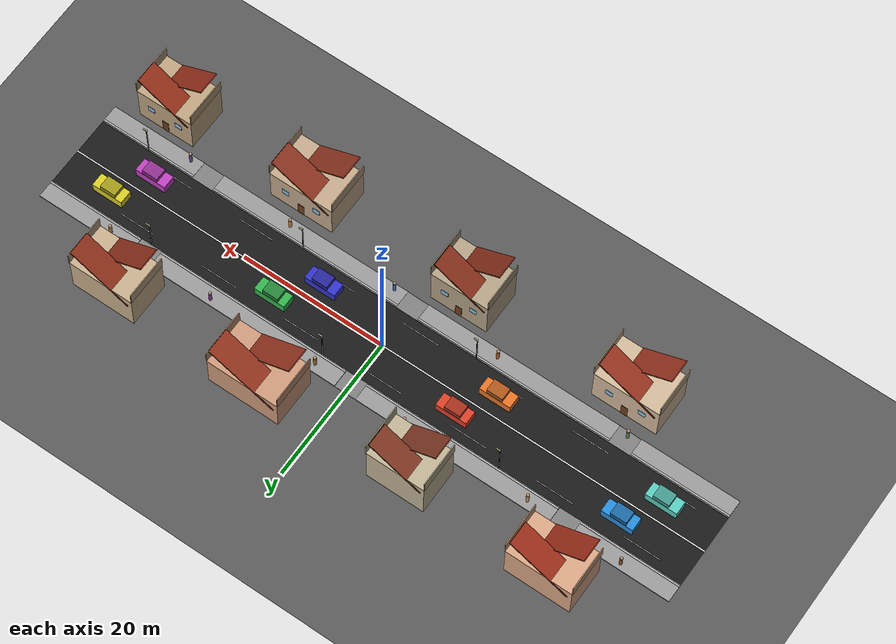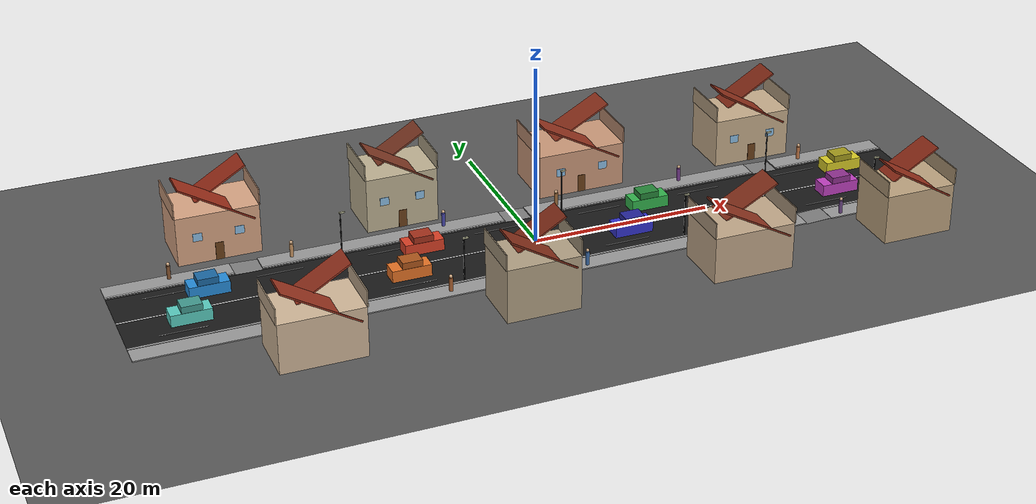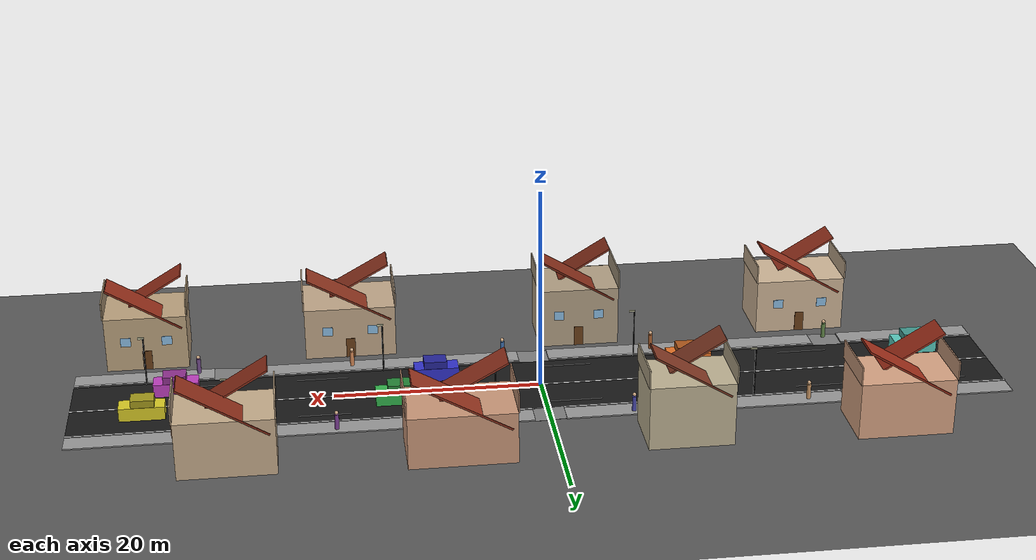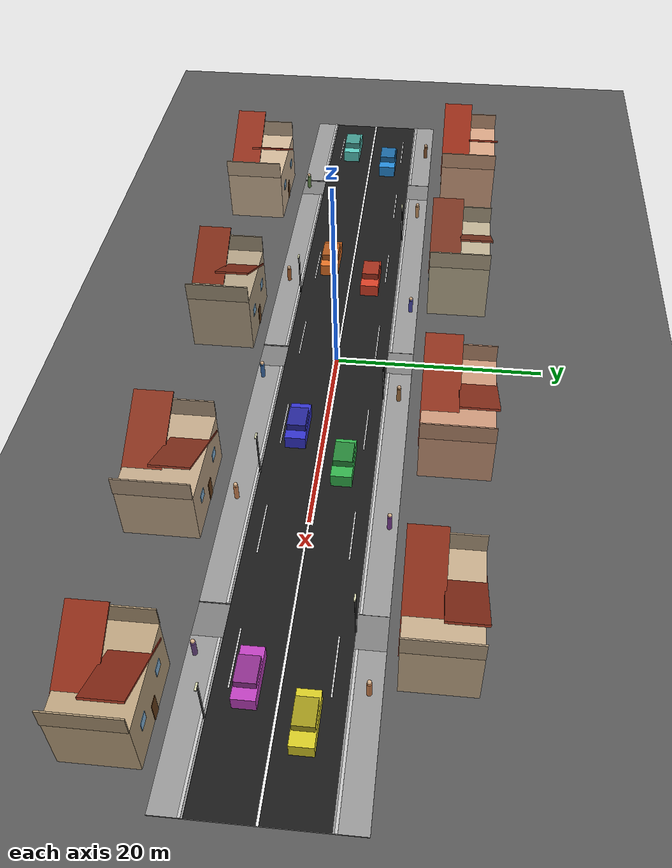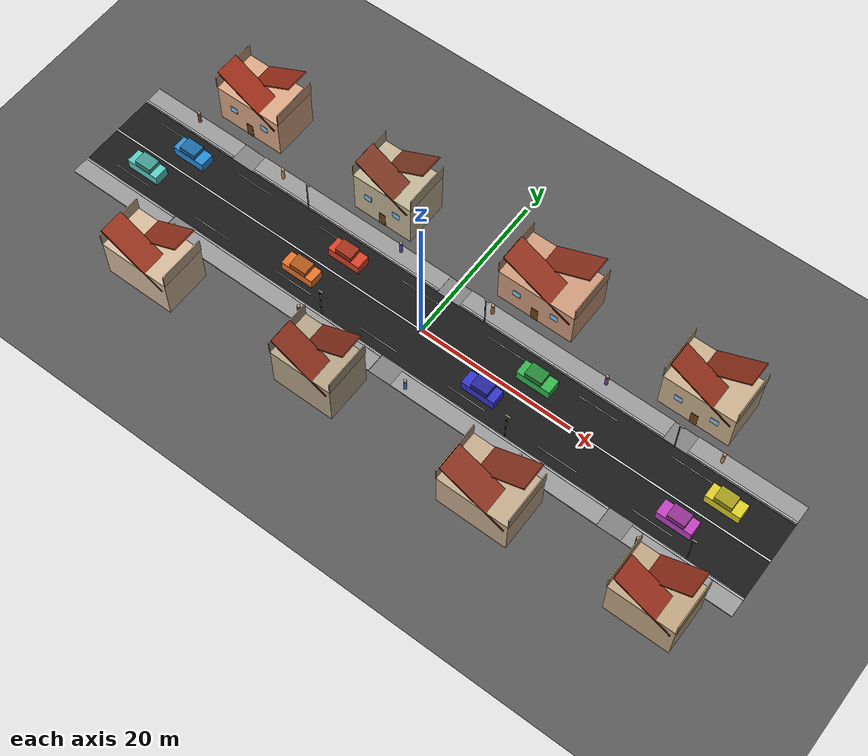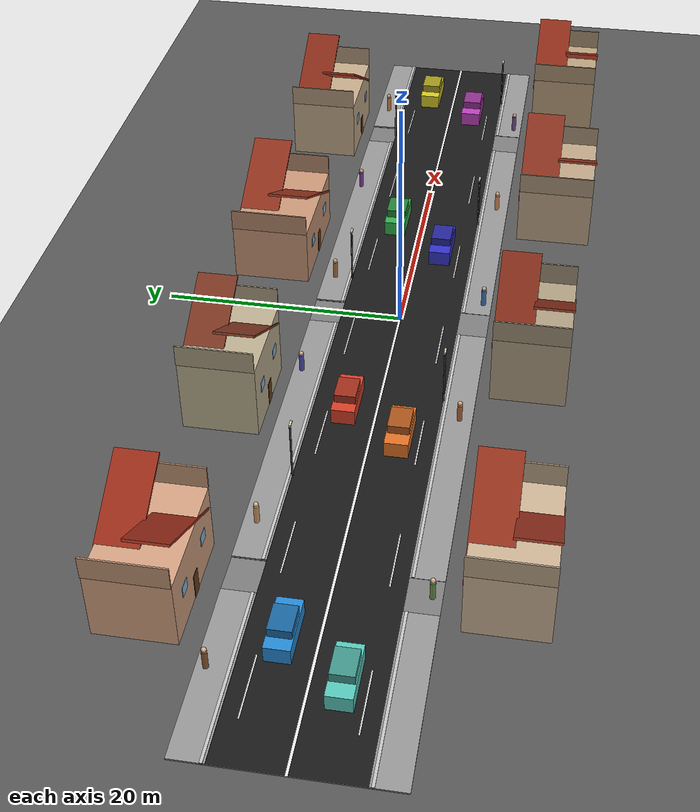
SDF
<?xml version="1.0" ?>
<sdf version="1.9">
  <world name="compact_city_world">
    <physics name="1ms" type="ignored">
      <max_step_size>0.001</max_step_size>
      <real_time_factor>1.0</real_time_factor>
    </physics>
    <plugin filename="gz-sim-physics-system" name="gz::sim::systems::Physics"></plugin>
    <plugin filename="gz-sim-user-commands-system" name="gz::sim::systems::UserCommands"></plugin>
    <plugin filename="gz-sim-scene-broadcaster-system" name="gz::sim::systems::SceneBroadcaster"></plugin>
    <plugin filename="gz-sim-contact-system" name="gz::sim::systems::Contact"></plugin>
    <plugin filename="gz-sim-sensors-system" name="gz::sim::systems::Sensors">
      <render_engine>ogre2</render_engine>
    </plugin>
    <plugin filename="gz-sim-imu-system" name="gz::sim::systems::Imu"></plugin>
    <plugin filename="gz-sim-navsat-system" name="gz::sim::systems::NavSat"></plugin>

    <spherical_coordinates>
      <surface_model>EARTH_WGS84</surface_model>
      <world_frame_orientation>ENU</world_frame_orientation>
      <latitude_deg>47.478950</latitude_deg>
      <longitude_deg>19.057785</longitude_deg>
      <elevation>0</elevation>
      <heading_deg>0</heading_deg>
    </spherical_coordinates>

    <gravity>0 0 -9.8000000000000007</gravity>
    <magnetic_field>5.5644999999999998e-06 2.2875799999999999e-05 -4.2388400000000002e-05</magnetic_field>
    <atmosphere type='adiabatic'/>

    <scene>
      <ambient>0.40 0.40 0.40 1</ambient>
      <background>0.70 0.70 0.70 1</background>
      <shadows>true</shadows>
    </scene>

    <light type="directional" name="sun">
      <cast_shadows>true</cast_shadows>
      <pose>0 0 10 0 0 0</pose>
      <diffuse>0.8 0.8 0.8 1</diffuse>
      <specular>0.2 0.2 0.2 1</specular>
      <attenuation>
        <range>1000</range>
        <constant>0.9</constant>
        <linear>0.01</linear>
        <quadratic>0.001</quadratic>
      </attenuation>
      <direction>-0.5 0.1 -0.9</direction>
    </light>
    <!-- Ground -->
    <model name="ground_plane">
      <static>true</static>
      <link name="ground_link">
        <collision name="collision">
          <geometry><plane><normal>0 0 1</normal><size>120 60</size></plane></geometry>
        </collision>
        <visual name="visual">
          <geometry><plane><normal>0 0 1</normal><size>120 60</size></plane></geometry>
          <material><ambient>0.35 0.35 0.35 1</ambient><diffuse>0.35 0.35 0.35 1</diffuse></material>
        </visual>
      </link>
    </model>
    <!-- Road -->
    <model name="road_main">
      <static>true</static>
      <link name="road_link">
        <collision name="collision">
          <geometry><box><size>90 10 0.05</size></box></geometry>
          <pose>0 0 0.025 0 0 0</pose>
        </collision>
        <visual name="visual">
          <geometry><box><size>90 10 0.05</size></box></geometry>
          <pose>0 0 0.025 0 0 0</pose>
          <material><ambient>0.08 0.08 0.08 1</ambient><diffuse>0.10 0.10 0.10 1</diffuse></material>
        </visual>
      </link>
    </model>
    <!-- Center line continua (linea di mezzeria) -->
    <model name="center_line_solid">
      <static>true</static>
      <link name="link">
        <collision name="collision">
          <geometry><box><size>90 0.20 0.01</size></box></geometry>
          <pose>0 0 0.055 0 0 0</pose>
        </collision>
        <visual name="visual">
          <geometry><box><size>90 0.20 0.01</size></box></geometry>
          <pose>0 0 0.055 0 0 0</pose>
          <material><ambient>0.95 0.95 0.95 1</ambient><diffuse>0.95 0.95 0.95 1</diffuse></material>
        </visual>
      </link>
    </model>
    <model name="lane_dash_north_edge_0">
      <static>true</static>
      <link name="link">
        <visual name="visual">
          <geometry><box><size>5 0.12 0.01</size></box></geometry>
          <pose>-39 3.8 0.055 0 0 0</pose>
          <material><ambient>0.85 0.85 0.85 1</ambient><diffuse>0.85 0.85 0.85 1</diffuse></material>
        </visual>
      </link>
    </model>
    <model name="lane_dash_north_edge_1">
      <static>true</static>
      <link name="link">
        <visual name="visual">
          <geometry><box><size>5 0.12 0.01</size></box></geometry>
          <pose>-27 3.8 0.055 0 0 0</pose>
          <material><ambient>0.85 0.85 0.85 1</ambient><diffuse>0.85 0.85 0.85 1</diffuse></material>
        </visual>
      </link>
    </model>
    <model name="lane_dash_north_edge_2">
      <static>true</static>
      <link name="link">
        <visual name="visual">
          <geometry><box><size>5 0.12 0.01</size></box></geometry>
          <pose>-15 3.8 0.055 0 0 0</pose>
          <material><ambient>0.85 0.85 0.85 1</ambient><diffuse>0.85 0.85 0.85 1</diffuse></material>
        </visual>
      </link>
    </model>
    <model name="lane_dash_north_edge_3">
      <static>true</static>
      <link name="link">
        <visual name="visual">
          <geometry><box><size>5 0.12 0.01</size></box></geometry>
          <pose>-3 3.8 0.055 0 0 0</pose>
          <material><ambient>0.85 0.85 0.85 1</ambient><diffuse>0.85 0.85 0.85 1</diffuse></material>
        </visual>
      </link>
    </model>
    <model name="lane_dash_north_edge_4">
      <static>true</static>
      <link name="link">
        <visual name="visual">
          <geometry><box><size>5 0.12 0.01</size></box></geometry>
          <pose>9 3.8 0.055 0 0 0</pose>
          <material><ambient>0.85 0.85 0.85 1</ambient><diffuse>0.85 0.85 0.85 1</diffuse></material>
        </visual>
      </link>
    </model>
    <model name="lane_dash_north_edge_5">
      <static>true</static>
      <link name="link">
        <visual name="visual">
          <geometry><box><size>5 0.12 0.01</size></box></geometry>
          <pose>21 3.8 0.055 0 0 0</pose>
          <material><ambient>0.85 0.85 0.85 1</ambient><diffuse>0.85 0.85 0.85 1</diffuse></material>
        </visual>
      </link>
    </model>
    <model name="lane_dash_north_edge_6">
      <static>true</static>
      <link name="link">
        <visual name="visual">
          <geometry><box><size>5 0.12 0.01</size></box></geometry>
          <pose>33 3.8 0.055 0 0 0</pose>
          <material><ambient>0.85 0.85 0.85 1</ambient><diffuse>0.85 0.85 0.85 1</diffuse></material>
        </visual>
      </link>
    </model>
    <model name="lane_dash_south_edge_0">
      <static>true</static>
      <link name="link">
        <visual name="visual">
          <geometry><box><size>5 0.12 0.01</size></box></geometry>
          <pose>-39 -3.8 0.055 0 0 0</pose>
          <material><ambient>0.85 0.85 0.85 1</ambient><diffuse>0.85 0.85 0.85 1</diffuse></material>
        </visual>
      </link>
    </model>
    <model name="lane_dash_south_edge_1">
      <static>true</static>
      <link name="link">
        <visual name="visual">
          <geometry><box><size>5 0.12 0.01</size></box></geometry>
          <pose>-27 -3.8 0.055 0 0 0</pose>
          <material><ambient>0.85 0.85 0.85 1</ambient><diffuse>0.85 0.85 0.85 1</diffuse></material>
        </visual>
      </link>
    </model>
    <model name="lane_dash_south_edge_2">
      <static>true</static>
      <link name="link">
        <visual name="visual">
          <geometry><box><size>5 0.12 0.01</size></box></geometry>
          <pose>-15 -3.8 0.055 0 0 0</pose>
          <material><ambient>0.85 0.85 0.85 1</ambient><diffuse>0.85 0.85 0.85 1</diffuse></material>
        </visual>
      </link>
    </model>
    <model name="lane_dash_south_edge_3">
      <static>true</static>
      <link name="link">
        <visual name="visual">
          <geometry><box><size>5 0.12 0.01</size></box></geometry>
          <pose>-3 -3.8 0.055 0 0 0</pose>
          <material><ambient>0.85 0.85 0.85 1</ambient><diffuse>0.85 0.85 0.85 1</diffuse></material>
        </visual>
      </link>
    </model>
    <model name="lane_dash_south_edge_4">
      <static>true</static>
      <link name="link">
        <visual name="visual">
          <geometry><box><size>5 0.12 0.01</size></box></geometry>
          <pose>9 -3.8 0.055 0 0 0</pose>
          <material><ambient>0.85 0.85 0.85 1</ambient><diffuse>0.85 0.85 0.85 1</diffuse></material>
        </visual>
      </link>
    </model>
    <model name="lane_dash_south_edge_5">
      <static>true</static>
      <link name="link">
        <visual name="visual">
          <geometry><box><size>5 0.12 0.01</size></box></geometry>
          <pose>21 -3.8 0.055 0 0 0</pose>
          <material><ambient>0.85 0.85 0.85 1</ambient><diffuse>0.85 0.85 0.85 1</diffuse></material>
        </visual>
      </link>
    </model>
    <model name="lane_dash_south_edge_6">
      <static>true</static>
      <link name="link">
        <visual name="visual">
          <geometry><box><size>5 0.12 0.01</size></box></geometry>
          <pose>33 -3.8 0.055 0 0 0</pose>
          <material><ambient>0.85 0.85 0.85 1</ambient><diffuse>0.85 0.85 0.85 1</diffuse></material>
        </visual>
      </link>
    </model>
    <model name="sidewalk_north_0">
      <static>true</static>
      <link name="link">
        <collision name="collision">
          <geometry><box><size>13.5 2.5 0.12</size></box></geometry>
          <pose>-38.25 6.25 0.06 0 0 0</pose>
        </collision>
        <visual name="visual">
          <geometry><box><size>13.5 2.5 0.12</size></box></geometry>
          <pose>-38.25 6.25 0.06 0 0 0</pose>
          <material><ambient>0.60 0.60 0.60 1</ambient><diffuse>0.60 0.60 0.60 1</diffuse></material>
        </visual>
      </link>
    </model>
    <model name="sidewalk_north_1">
      <static>true</static>
      <link name="link">
        <collision name="collision">
          <geometry><box><size>27.0 2.5 0.12</size></box></geometry>
          <pose>-15.0 6.25 0.06 0 0 0</pose>
        </collision>
        <visual name="visual">
          <geometry><box><size>27.0 2.5 0.12</size></box></geometry>
          <pose>-15.0 6.25 0.06 0 0 0</pose>
          <material><ambient>0.60 0.60 0.60 1</ambient><diffuse>0.60 0.60 0.60 1</diffuse></material>
        </visual>
      </link>
    </model>
    <model name="sidewalk_north_2">
      <static>true</static>
      <link name="link">
        <collision name="collision">
          <geometry><box><size>27.0 2.5 0.12</size></box></geometry>
          <pose>15.0 6.25 0.06 0 0 0</pose>
        </collision>
        <visual name="visual">
          <geometry><box><size>27.0 2.5 0.12</size></box></geometry>
          <pose>15.0 6.25 0.06 0 0 0</pose>
          <material><ambient>0.60 0.60 0.60 1</ambient><diffuse>0.60 0.60 0.60 1</diffuse></material>
        </visual>
      </link>
    </model>
    <model name="sidewalk_north_3">
      <static>true</static>
      <link name="link">
        <collision name="collision">
          <geometry><box><size>13.5 2.5 0.12</size></box></geometry>
          <pose>38.25 6.25 0.06 0 0 0</pose>
        </collision>
        <visual name="visual">
          <geometry><box><size>13.5 2.5 0.12</size></box></geometry>
          <pose>38.25 6.25 0.06 0 0 0</pose>
          <material><ambient>0.60 0.60 0.60 1</ambient><diffuse>0.60 0.60 0.60 1</diffuse></material>
        </visual>
      </link>
    </model>
    <model name="sidewalk_south_0">
      <static>true</static>
      <link name="link">
        <collision name="collision">
          <geometry><box><size>13.5 2.5 0.12</size></box></geometry>
          <pose>-38.25 -6.25 0.06 0 0 0</pose>
        </collision>
        <visual name="visual">
          <geometry><box><size>13.5 2.5 0.12</size></box></geometry>
          <pose>-38.25 -6.25 0.06 0 0 0</pose>
          <material><ambient>0.60 0.60 0.60 1</ambient><diffuse>0.60 0.60 0.60 1</diffuse></material>
        </visual>
      </link>
    </model>
    <model name="sidewalk_south_1">
      <static>true</static>
      <link name="link">
        <collision name="collision">
          <geometry><box><size>27.0 2.5 0.12</size></box></geometry>
          <pose>-15.0 -6.25 0.06 0 0 0</pose>
        </collision>
        <visual name="visual">
          <geometry><box><size>27.0 2.5 0.12</size></box></geometry>
          <pose>-15.0 -6.25 0.06 0 0 0</pose>
          <material><ambient>0.60 0.60 0.60 1</ambient><diffuse>0.60 0.60 0.60 1</diffuse></material>
        </visual>
      </link>
    </model>
    <model name="sidewalk_south_2">
      <static>true</static>
      <link name="link">
        <collision name="collision">
          <geometry><box><size>27.0 2.5 0.12</size></box></geometry>
          <pose>15.0 -6.25 0.06 0 0 0</pose>
        </collision>
        <visual name="visual">
          <geometry><box><size>27.0 2.5 0.12</size></box></geometry>
          <pose>15.0 -6.25 0.06 0 0 0</pose>
          <material><ambient>0.60 0.60 0.60 1</ambient><diffuse>0.60 0.60 0.60 1</diffuse></material>
        </visual>
      </link>
    </model>
    <model name="sidewalk_south_3">
      <static>true</static>
      <link name="link">
        <collision name="collision">
          <geometry><box><size>13.5 2.5 0.12</size></box></geometry>
          <pose>38.25 -6.25 0.06 0 0 0</pose>
        </collision>
        <visual name="visual">
          <geometry><box><size>13.5 2.5 0.12</size></box></geometry>
          <pose>38.25 -6.25 0.06 0 0 0</pose>
          <material><ambient>0.60 0.60 0.60 1</ambient><diffuse>0.60 0.60 0.60 1</diffuse></material>
        </visual>
      </link>
    </model>
    <!-- Rampa abbassamento marciapiede north x=-30 -->
    <model name="ramp_north_-30">
      <static>true</static>
      <link name="link">
        <collision name="collision">
          <geometry><box><size>3.0 2.5 0.02</size></box></geometry>
          <pose>-30 6.25 0.03 0 0.0400 0</pose>
        </collision>
        <visual name="visual">
          <geometry><box><size>3.0 2.5 0.02</size></box></geometry>
          <pose>-30 6.25 0.03 0 0.0400 0</pose>
          <material><ambient>0.50 0.50 0.50 1</ambient><diffuse>0.50 0.50 0.50 1</diffuse></material>
        </visual>
      </link>
    </model>
    <!-- Rampa abbassamento marciapiede south x=-30 -->
    <model name="ramp_south_-30">
      <static>true</static>
      <link name="link">
        <collision name="collision">
          <geometry><box><size>3.0 2.5 0.02</size></box></geometry>
          <pose>-30 -6.25 0.03 0 -0.0400 0</pose>
        </collision>
        <visual name="visual">
          <geometry><box><size>3.0 2.5 0.02</size></box></geometry>
          <pose>-30 -6.25 0.03 0 -0.0400 0</pose>
          <material><ambient>0.50 0.50 0.50 1</ambient><diffuse>0.50 0.50 0.50 1</diffuse></material>
        </visual>
      </link>
    </model>
    <!-- Rampa abbassamento marciapiede north x=0 -->
    <model name="ramp_north_0">
      <static>true</static>
      <link name="link">
        <collision name="collision">
          <geometry><box><size>3.0 2.5 0.02</size></box></geometry>
          <pose>0 6.25 0.03 0 0.0400 0</pose>
        </collision>
        <visual name="visual">
          <geometry><box><size>3.0 2.5 0.02</size></box></geometry>
          <pose>0 6.25 0.03 0 0.0400 0</pose>
          <material><ambient>0.50 0.50 0.50 1</ambient><diffuse>0.50 0.50 0.50 1</diffuse></material>
        </visual>
      </link>
    </model>
    <!-- Rampa abbassamento marciapiede south x=0 -->
    <model name="ramp_south_0">
      <static>true</static>
      <link name="link">
        <collision name="collision">
          <geometry><box><size>3.0 2.5 0.02</size></box></geometry>
          <pose>0 -6.25 0.03 0 -0.0400 0</pose>
        </collision>
        <visual name="visual">
          <geometry><box><size>3.0 2.5 0.02</size></box></geometry>
          <pose>0 -6.25 0.03 0 -0.0400 0</pose>
          <material><ambient>0.50 0.50 0.50 1</ambient><diffuse>0.50 0.50 0.50 1</diffuse></material>
        </visual>
      </link>
    </model>
    <!-- Rampa abbassamento marciapiede north x=30 -->
    <model name="ramp_north_30">
      <static>true</static>
      <link name="link">
        <collision name="collision">
          <geometry><box><size>3.0 2.5 0.02</size></box></geometry>
          <pose>30 6.25 0.03 0 0.0400 0</pose>
        </collision>
        <visual name="visual">
          <geometry><box><size>3.0 2.5 0.02</size></box></geometry>
          <pose>30 6.25 0.03 0 0.0400 0</pose>
          <material><ambient>0.50 0.50 0.50 1</ambient><diffuse>0.50 0.50 0.50 1</diffuse></material>
        </visual>
      </link>
    </model>
    <!-- Rampa abbassamento marciapiede south x=30 -->
    <model name="ramp_south_30">
      <static>true</static>
      <link name="link">
        <collision name="collision">
          <geometry><box><size>3.0 2.5 0.02</size></box></geometry>
          <pose>30 -6.25 0.03 0 -0.0400 0</pose>
        </collision>
        <visual name="visual">
          <geometry><box><size>3.0 2.5 0.02</size></box></geometry>
          <pose>30 -6.25 0.03 0 -0.0400 0</pose>
          <material><ambient>0.50 0.50 0.50 1</ambient><diffuse>0.50 0.50 0.50 1</diffuse></material>
        </visual>
      </link>
    </model>
    <model name="curb_north_0">
      <static>true</static>
      <link name="link">
        <collision name="collision">
          <geometry><box><size>13.5 0.22 0.18</size></box></geometry>
          <pose>-38.25 5.25 0.09 0 0 0</pose>
        </collision>
        <visual name="visual">
          <geometry><box><size>13.5 0.22 0.18</size></box></geometry>
          <pose>-38.25 5.25 0.09 0 0 0</pose>
          <material><ambient>0.78 0.78 0.78 1</ambient><diffuse>0.78 0.78 0.78 1</diffuse></material>
        </visual>
      </link>
    </model>
    <model name="curb_south_0">
      <static>true</static>
      <link name="link">
        <collision name="collision">
          <geometry><box><size>13.5 0.22 0.18</size></box></geometry>
          <pose>-38.25 -5.25 0.09 0 0 0</pose>
        </collision>
        <visual name="visual">
          <geometry><box><size>13.5 0.22 0.18</size></box></geometry>
          <pose>-38.25 -5.25 0.09 0 0 0</pose>
          <material><ambient>0.78 0.78 0.78 1</ambient><diffuse>0.78 0.78 0.78 1</diffuse></material>
        </visual>
      </link>
    </model>
    <model name="curb_north_1">
      <static>true</static>
      <link name="link">
        <collision name="collision">
          <geometry><box><size>27.0 0.22 0.18</size></box></geometry>
          <pose>-15.0 5.25 0.09 0 0 0</pose>
        </collision>
        <visual name="visual">
          <geometry><box><size>27.0 0.22 0.18</size></box></geometry>
          <pose>-15.0 5.25 0.09 0 0 0</pose>
          <material><ambient>0.78 0.78 0.78 1</ambient><diffuse>0.78 0.78 0.78 1</diffuse></material>
        </visual>
      </link>
    </model>
    <model name="curb_south_1">
      <static>true</static>
      <link name="link">
        <collision name="collision">
          <geometry><box><size>27.0 0.22 0.18</size></box></geometry>
          <pose>-15.0 -5.25 0.09 0 0 0</pose>
        </collision>
        <visual name="visual">
          <geometry><box><size>27.0 0.22 0.18</size></box></geometry>
          <pose>-15.0 -5.25 0.09 0 0 0</pose>
          <material><ambient>0.78 0.78 0.78 1</ambient><diffuse>0.78 0.78 0.78 1</diffuse></material>
        </visual>
      </link>
    </model>
    <model name="curb_north_2">
      <static>true</static>
      <link name="link">
        <collision name="collision">
          <geometry><box><size>27.0 0.22 0.18</size></box></geometry>
          <pose>15.0 5.25 0.09 0 0 0</pose>
        </collision>
        <visual name="visual">
          <geometry><box><size>27.0 0.22 0.18</size></box></geometry>
          <pose>15.0 5.25 0.09 0 0 0</pose>
          <material><ambient>0.78 0.78 0.78 1</ambient><diffuse>0.78 0.78 0.78 1</diffuse></material>
        </visual>
      </link>
    </model>
    <model name="curb_south_2">
      <static>true</static>
      <link name="link">
        <collision name="collision">
          <geometry><box><size>27.0 0.22 0.18</size></box></geometry>
          <pose>15.0 -5.25 0.09 0 0 0</pose>
        </collision>
        <visual name="visual">
          <geometry><box><size>27.0 0.22 0.18</size></box></geometry>
          <pose>15.0 -5.25 0.09 0 0 0</pose>
          <material><ambient>0.78 0.78 0.78 1</ambient><diffuse>0.78 0.78 0.78 1</diffuse></material>
        </visual>
      </link>
    </model>
    <model name="curb_north_3">
      <static>true</static>
      <link name="link">
        <collision name="collision">
          <geometry><box><size>13.5 0.22 0.18</size></box></geometry>
          <pose>38.25 5.25 0.09 0 0 0</pose>
        </collision>
        <visual name="visual">
          <geometry><box><size>13.5 0.22 0.18</size></box></geometry>
          <pose>38.25 5.25 0.09 0 0 0</pose>
          <material><ambient>0.78 0.78 0.78 1</ambient><diffuse>0.78 0.78 0.78 1</diffuse></material>
        </visual>
      </link>
    </model>
    <model name="curb_south_3">
      <static>true</static>
      <link name="link">
        <collision name="collision">
          <geometry><box><size>13.5 0.22 0.18</size></box></geometry>
          <pose>38.25 -5.25 0.09 0 0 0</pose>
        </collision>
        <visual name="visual">
          <geometry><box><size>13.5 0.22 0.18</size></box></geometry>
          <pose>38.25 -5.25 0.09 0 0 0</pose>
          <material><ambient>0.78 0.78 0.78 1</ambient><diffuse>0.78 0.78 0.78 1</diffuse></material>
        </visual>
      </link>
    </model>
    <!-- Casa N1 -->
    <model name="house_N1">
      <static>true</static>
      <pose>-32 12 0 0 0 0</pose>
      <link name="walls">
        <collision name="col_body">
          <geometry><box><size>9 6 5.5</size></box></geometry>
          <pose>0 0 2.75 0 0 0</pose>
        </collision>
        <visual name="vis_body">
          <geometry><box><size>9 6 5.5</size></box></geometry>
          <pose>0 0 2.75 0 0 0</pose>
          <material><ambient>0.85 0.65 0.52 1</ambient><diffuse>0.85 0.65 0.52 1</diffuse></material>
        </visual>
        <visual name="roof_a">
          <geometry><box><size>9.3 3.15 0.18</size></box></geometry>
          <pose>0 1.5 6.400 0 -0.5404 0</pose>
          <material><ambient>0.62 0.18 0.1 1</ambient><diffuse>0.62 0.18 0.1 1</diffuse></material>
        </visual>
        <visual name="roof_b">
          <geometry><box><size>9.3 3.15 0.18</size></box></geometry>
          <pose>0 -1.5 6.400 0 0.5404 0</pose>
          <material><ambient>0.62 0.18 0.1 1</ambient><diffuse>0.62 0.18 0.1 1</diffuse></material>
        </visual>
        <visual name="gable_a">
          <geometry><box><size>0.12 6 1.7999999999999998</size></box></geometry>
          <pose>4.55 0 6.400 0 0 0</pose>
          <material><ambient>0.77 0.59 0.47 1</ambient><diffuse>0.77 0.59 0.47 1</diffuse></material>
        </visual>
        <visual name="gable_b">
          <geometry><box><size>0.12 6 1.7999999999999998</size></box></geometry>
          <pose>-4.55 0 6.400 0 0 0</pose>
          <material><ambient>0.77 0.59 0.47 1</ambient><diffuse>0.77 0.59 0.47 1</diffuse></material>
        </visual>
        <visual name="win_-2">
          <geometry><box><size>1.0 0.08 0.90</size></box></geometry>
          <pose>-2.25 -3.00 3.03 0 0 0</pose>
          <material><ambient>0.55 0.75 0.90 1</ambient><diffuse>0.55 0.75 0.90 1</diffuse></material>
        </visual>
        <visual name="win_2">
          <geometry><box><size>1.0 0.08 0.90</size></box></geometry>
          <pose>2.25 -3.00 3.03 0 0 0</pose>
          <material><ambient>0.55 0.75 0.90 1</ambient><diffuse>0.55 0.75 0.90 1</diffuse></material>
        </visual>
        <visual name="door">
          <geometry><box><size>0.90 0.08 2.0</size></box></geometry>
          <pose>0 -3.00 1.0 0 0 0</pose>
          <material><ambient>0.42 0.25 0.10 1</ambient><diffuse>0.42 0.25 0.10 1</diffuse></material>
        </visual>
      </link>
    </model>
    <!-- Casa N2 -->
    <model name="house_N2">
      <static>true</static>
      <pose>-12 11.5 0 0 0 0</pose>
      <link name="walls">
        <collision name="col_body">
          <geometry><box><size>8 6 6.2</size></box></geometry>
          <pose>0 0 3.1 0 0 0</pose>
        </collision>
        <visual name="vis_body">
          <geometry><box><size>8 6 6.2</size></box></geometry>
          <pose>0 0 3.1 0 0 0</pose>
          <material><ambient>0.75 0.7 0.58 1</ambient><diffuse>0.75 0.7 0.58 1</diffuse></material>
        </visual>
        <visual name="roof_a">
          <geometry><box><size>8.3 3.15 0.18</size></box></geometry>
          <pose>0 1.5 7.100 0 -0.5404 0</pose>
          <material><ambient>0.5 0.22 0.14 1</ambient><diffuse>0.5 0.22 0.14 1</diffuse></material>
        </visual>
        <visual name="roof_b">
          <geometry><box><size>8.3 3.15 0.18</size></box></geometry>
          <pose>0 -1.5 7.100 0 0.5404 0</pose>
          <material><ambient>0.5 0.22 0.14 1</ambient><diffuse>0.5 0.22 0.14 1</diffuse></material>
        </visual>
        <visual name="gable_a">
          <geometry><box><size>0.12 6 1.7999999999999998</size></box></geometry>
          <pose>4.05 0 7.100 0 0 0</pose>
          <material><ambient>0.68 0.63 0.52 1</ambient><diffuse>0.68 0.63 0.52 1</diffuse></material>
        </visual>
        <visual name="gable_b">
          <geometry><box><size>0.12 6 1.7999999999999998</size></box></geometry>
          <pose>-4.05 0 7.100 0 0 0</pose>
          <material><ambient>0.68 0.63 0.52 1</ambient><diffuse>0.68 0.63 0.52 1</diffuse></material>
        </visual>
        <visual name="win_-2">
          <geometry><box><size>1.0 0.08 0.90</size></box></geometry>
          <pose>-2.00 -3.00 3.41 0 0 0</pose>
          <material><ambient>0.55 0.75 0.90 1</ambient><diffuse>0.55 0.75 0.90 1</diffuse></material>
        </visual>
        <visual name="win_2">
          <geometry><box><size>1.0 0.08 0.90</size></box></geometry>
          <pose>2.00 -3.00 3.41 0 0 0</pose>
          <material><ambient>0.55 0.75 0.90 1</ambient><diffuse>0.55 0.75 0.90 1</diffuse></material>
        </visual>
        <visual name="door">
          <geometry><box><size>0.90 0.08 2.0</size></box></geometry>
          <pose>0 -3.00 1.0 0 0 0</pose>
          <material><ambient>0.42 0.25 0.10 1</ambient><diffuse>0.42 0.25 0.10 1</diffuse></material>
        </visual>
      </link>
    </model>
    <!-- Casa N3 -->
    <model name="house_N3">
      <static>true</static>
      <pose>9 12 0 0 0 0</pose>
      <link name="walls">
        <collision name="col_body">
          <geometry><box><size>10 6.5 5.0</size></box></geometry>
          <pose>0 0 2.5 0 0 0</pose>
        </collision>
        <visual name="vis_body">
          <geometry><box><size>10 6.5 5.0</size></box></geometry>
          <pose>0 0 2.5 0 0 0</pose>
          <material><ambient>0.8 0.6 0.48 1</ambient><diffuse>0.8 0.6 0.48 1</diffuse></material>
        </visual>
        <visual name="roof_a">
          <geometry><box><size>10.3 3.4 0.18</size></box></geometry>
          <pose>0 1.625 5.900 0 -0.5058 0</pose>
          <material><ambient>0.58 0.2 0.12 1</ambient><diffuse>0.58 0.2 0.12 1</diffuse></material>
        </visual>
        <visual name="roof_b">
          <geometry><box><size>10.3 3.4 0.18</size></box></geometry>
          <pose>0 -1.625 5.900 0 0.5058 0</pose>
          <material><ambient>0.58 0.2 0.12 1</ambient><diffuse>0.58 0.2 0.12 1</diffuse></material>
        </visual>
        <visual name="gable_a">
          <geometry><box><size>0.12 6.5 1.7999999999999998</size></box></geometry>
          <pose>5.05 0 5.900 0 0 0</pose>
          <material><ambient>0.72 0.54 0.43 1</ambient><diffuse>0.72 0.54 0.43 1</diffuse></material>
        </visual>
        <visual name="gable_b">
          <geometry><box><size>0.12 6.5 1.7999999999999998</size></box></geometry>
          <pose>-5.05 0 5.900 0 0 0</pose>
          <material><ambient>0.72 0.54 0.43 1</ambient><diffuse>0.72 0.54 0.43 1</diffuse></material>
        </visual>
        <visual name="win_-2">
          <geometry><box><size>1.0 0.08 0.90</size></box></geometry>
          <pose>-2.50 -3.25 2.75 0 0 0</pose>
          <material><ambient>0.55 0.75 0.90 1</ambient><diffuse>0.55 0.75 0.90 1</diffuse></material>
        </visual>
        <visual name="win_2">
          <geometry><box><size>1.0 0.08 0.90</size></box></geometry>
          <pose>2.50 -3.25 2.75 0 0 0</pose>
          <material><ambient>0.55 0.75 0.90 1</ambient><diffuse>0.55 0.75 0.90 1</diffuse></material>
        </visual>
        <visual name="door">
          <geometry><box><size>0.90 0.08 2.0</size></box></geometry>
          <pose>0 -3.25 1.0 0 0 0</pose>
          <material><ambient>0.42 0.25 0.10 1</ambient><diffuse>0.42 0.25 0.10 1</diffuse></material>
        </visual>
      </link>
    </model>
    <!-- Casa N4 -->
    <model name="house_N4">
      <static>true</static>
      <pose>30 11.5 0 0 0 0</pose>
      <link name="walls">
        <collision name="col_body">
          <geometry><box><size>9 6 5.5</size></box></geometry>
          <pose>0 0 2.75 0 0 0</pose>
        </collision>
        <visual name="vis_body">
          <geometry><box><size>9 6 5.5</size></box></geometry>
          <pose>0 0 2.75 0 0 0</pose>
          <material><ambient>0.78 0.68 0.55 1</ambient><diffuse>0.78 0.68 0.55 1</diffuse></material>
        </visual>
        <visual name="roof_a">
          <geometry><box><size>9.3 3.15 0.18</size></box></geometry>
          <pose>0 1.5 6.400 0 -0.5404 0</pose>
          <material><ambient>0.55 0.18 0.1 1</ambient><diffuse>0.55 0.18 0.1 1</diffuse></material>
        </visual>
        <visual name="roof_b">
          <geometry><box><size>9.3 3.15 0.18</size></box></geometry>
          <pose>0 -1.5 6.400 0 0.5404 0</pose>
          <material><ambient>0.55 0.18 0.1 1</ambient><diffuse>0.55 0.18 0.1 1</diffuse></material>
        </visual>
        <visual name="gable_a">
          <geometry><box><size>0.12 6 1.7999999999999998</size></box></geometry>
          <pose>4.55 0 6.400 0 0 0</pose>
          <material><ambient>0.70 0.61 0.50 1</ambient><diffuse>0.70 0.61 0.50 1</diffuse></material>
        </visual>
        <visual name="gable_b">
          <geometry><box><size>0.12 6 1.7999999999999998</size></box></geometry>
          <pose>-4.55 0 6.400 0 0 0</pose>
          <material><ambient>0.70 0.61 0.50 1</ambient><diffuse>0.70 0.61 0.50 1</diffuse></material>
        </visual>
        <visual name="win_-2">
          <geometry><box><size>1.0 0.08 0.90</size></box></geometry>
          <pose>-2.25 -3.00 3.03 0 0 0</pose>
          <material><ambient>0.55 0.75 0.90 1</ambient><diffuse>0.55 0.75 0.90 1</diffuse></material>
        </visual>
        <visual name="win_2">
          <geometry><box><size>1.0 0.08 0.90</size></box></geometry>
          <pose>2.25 -3.00 3.03 0 0 0</pose>
          <material><ambient>0.55 0.75 0.90 1</ambient><diffuse>0.55 0.75 0.90 1</diffuse></material>
        </visual>
        <visual name="door">
          <geometry><box><size>0.90 0.08 2.0</size></box></geometry>
          <pose>0 -3.00 1.0 0 0 0</pose>
          <material><ambient>0.42 0.25 0.10 1</ambient><diffuse>0.42 0.25 0.10 1</diffuse></material>
        </visual>
      </link>
    </model>
    <!-- Casa S1 -->
    <model name="house_S1">
      <static>true</static>
      <pose>-28 -12 0 0 0 0</pose>
      <link name="walls">
        <collision name="col_body">
          <geometry><box><size>9 6 5.5</size></box></geometry>
          <pose>0 0 2.75 0 0 0</pose>
        </collision>
        <visual name="vis_body">
          <geometry><box><size>9 6 5.5</size></box></geometry>
          <pose>0 0 2.75 0 0 0</pose>
          <material><ambient>0.82 0.72 0.6 1</ambient><diffuse>0.82 0.72 0.6 1</diffuse></material>
        </visual>
        <visual name="roof_a">
          <geometry><box><size>9.3 3.15 0.18</size></box></geometry>
          <pose>0 1.5 6.400 0 -0.5404 0</pose>
          <material><ambient>0.6 0.2 0.12 1</ambient><diffuse>0.6 0.2 0.12 1</diffuse></material>
        </visual>
        <visual name="roof_b">
          <geometry><box><size>9.3 3.15 0.18</size></box></geometry>
          <pose>0 -1.5 6.400 0 0.5404 0</pose>
          <material><ambient>0.6 0.2 0.12 1</ambient><diffuse>0.6 0.2 0.12 1</diffuse></material>
        </visual>
        <visual name="gable_a">
          <geometry><box><size>0.12 6 1.7999999999999998</size></box></geometry>
          <pose>4.55 0 6.400 0 0 0</pose>
          <material><ambient>0.74 0.65 0.54 1</ambient><diffuse>0.74 0.65 0.54 1</diffuse></material>
        </visual>
        <visual name="gable_b">
          <geometry><box><size>0.12 6 1.7999999999999998</size></box></geometry>
          <pose>-4.55 0 6.400 0 0 0</pose>
          <material><ambient>0.74 0.65 0.54 1</ambient><diffuse>0.74 0.65 0.54 1</diffuse></material>
        </visual>
        <visual name="win_-2">
          <geometry><box><size>1.0 0.08 0.90</size></box></geometry>
          <pose>-2.25 3.00 3.03 0 0 0</pose>
          <material><ambient>0.55 0.75 0.90 1</ambient><diffuse>0.55 0.75 0.90 1</diffuse></material>
        </visual>
        <visual name="win_2">
          <geometry><box><size>1.0 0.08 0.90</size></box></geometry>
          <pose>2.25 3.00 3.03 0 0 0</pose>
          <material><ambient>0.55 0.75 0.90 1</ambient><diffuse>0.55 0.75 0.90 1</diffuse></material>
        </visual>
        <visual name="door">
          <geometry><box><size>0.90 0.08 2.0</size></box></geometry>
          <pose>0 3.00 1.0 0 0 0</pose>
          <material><ambient>0.42 0.25 0.10 1</ambient><diffuse>0.42 0.25 0.10 1</diffuse></material>
        </visual>
      </link>
    </model>
    <!-- Casa S2 -->
    <model name="house_S2">
      <static>true</static>
      <pose>-5 -11.5 0 0 0 0</pose>
      <link name="walls">
        <collision name="col_body">
          <geometry><box><size>8 6 6.0</size></box></geometry>
          <pose>0 0 3.0 0 0 0</pose>
        </collision>
        <visual name="vis_body">
          <geometry><box><size>8 6 6.0</size></box></geometry>
          <pose>0 0 3.0 0 0 0</pose>
          <material><ambient>0.7 0.63 0.52 1</ambient><diffuse>0.7 0.63 0.52 1</diffuse></material>
        </visual>
        <visual name="roof_a">
          <geometry><box><size>8.3 3.15 0.18</size></box></geometry>
          <pose>0 1.5 6.900 0 -0.5404 0</pose>
          <material><ambient>0.52 0.18 0.1 1</ambient><diffuse>0.52 0.18 0.1 1</diffuse></material>
        </visual>
        <visual name="roof_b">
          <geometry><box><size>8.3 3.15 0.18</size></box></geometry>
          <pose>0 -1.5 6.900 0 0.5404 0</pose>
          <material><ambient>0.52 0.18 0.1 1</ambient><diffuse>0.52 0.18 0.1 1</diffuse></material>
        </visual>
        <visual name="gable_a">
          <geometry><box><size>0.12 6 1.7999999999999998</size></box></geometry>
          <pose>4.05 0 6.900 0 0 0</pose>
          <material><ambient>0.63 0.57 0.47 1</ambient><diffuse>0.63 0.57 0.47 1</diffuse></material>
        </visual>
        <visual name="gable_b">
          <geometry><box><size>0.12 6 1.7999999999999998</size></box></geometry>
          <pose>-4.05 0 6.900 0 0 0</pose>
          <material><ambient>0.63 0.57 0.47 1</ambient><diffuse>0.63 0.57 0.47 1</diffuse></material>
        </visual>
        <visual name="win_-2">
          <geometry><box><size>1.0 0.08 0.90</size></box></geometry>
          <pose>-2.00 3.00 3.30 0 0 0</pose>
          <material><ambient>0.55 0.75 0.90 1</ambient><diffuse>0.55 0.75 0.90 1</diffuse></material>
        </visual>
        <visual name="win_2">
          <geometry><box><size>1.0 0.08 0.90</size></box></geometry>
          <pose>2.00 3.00 3.30 0 0 0</pose>
          <material><ambient>0.55 0.75 0.90 1</ambient><diffuse>0.55 0.75 0.90 1</diffuse></material>
        </visual>
        <visual name="door">
          <geometry><box><size>0.90 0.08 2.0</size></box></geometry>
          <pose>0 3.00 1.0 0 0 0</pose>
          <material><ambient>0.42 0.25 0.10 1</ambient><diffuse>0.42 0.25 0.10 1</diffuse></material>
        </visual>
      </link>
    </model>
    <!-- Casa S3 -->
    <model name="house_S3">
      <static>true</static>
      <pose>18 -12 0 0 0 0</pose>
      <link name="walls">
        <collision name="col_body">
          <geometry><box><size>9 6.5 5.2</size></box></geometry>
          <pose>0 0 2.6 0 0 0</pose>
        </collision>
        <visual name="vis_body">
          <geometry><box><size>9 6.5 5.2</size></box></geometry>
          <pose>0 0 2.6 0 0 0</pose>
          <material><ambient>0.76 0.66 0.54 1</ambient><diffuse>0.76 0.66 0.54 1</diffuse></material>
        </visual>
        <visual name="roof_a">
          <geometry><box><size>9.3 3.4 0.18</size></box></geometry>
          <pose>0 1.625 6.100 0 -0.5058 0</pose>
          <material><ambient>0.55 0.2 0.12 1</ambient><diffuse>0.55 0.2 0.12 1</diffuse></material>
        </visual>
        <visual name="roof_b">
          <geometry><box><size>9.3 3.4 0.18</size></box></geometry>
          <pose>0 -1.625 6.100 0 0.5058 0</pose>
          <material><ambient>0.55 0.2 0.12 1</ambient><diffuse>0.55 0.2 0.12 1</diffuse></material>
        </visual>
        <visual name="gable_a">
          <geometry><box><size>0.12 6.5 1.7999999999999998</size></box></geometry>
          <pose>4.55 0 6.100 0 0 0</pose>
          <material><ambient>0.68 0.59 0.49 1</ambient><diffuse>0.68 0.59 0.49 1</diffuse></material>
        </visual>
        <visual name="gable_b">
          <geometry><box><size>0.12 6.5 1.7999999999999998</size></box></geometry>
          <pose>-4.55 0 6.100 0 0 0</pose>
          <material><ambient>0.68 0.59 0.49 1</ambient><diffuse>0.68 0.59 0.49 1</diffuse></material>
        </visual>
        <visual name="win_-2">
          <geometry><box><size>1.0 0.08 0.90</size></box></geometry>
          <pose>-2.25 3.25 2.86 0 0 0</pose>
          <material><ambient>0.55 0.75 0.90 1</ambient><diffuse>0.55 0.75 0.90 1</diffuse></material>
        </visual>
        <visual name="win_2">
          <geometry><box><size>1.0 0.08 0.90</size></box></geometry>
          <pose>2.25 3.25 2.86 0 0 0</pose>
          <material><ambient>0.55 0.75 0.90 1</ambient><diffuse>0.55 0.75 0.90 1</diffuse></material>
        </visual>
        <visual name="door">
          <geometry><box><size>0.90 0.08 2.0</size></box></geometry>
          <pose>0 3.25 1.0 0 0 0</pose>
          <material><ambient>0.42 0.25 0.10 1</ambient><diffuse>0.42 0.25 0.10 1</diffuse></material>
        </visual>
      </link>
    </model>
    <!-- Casa S4 -->
    <model name="house_S4">
      <static>true</static>
      <pose>38 -11.5 0 0 0 0</pose>
      <link name="walls">
        <collision name="col_body">
          <geometry><box><size>8 6 5.5</size></box></geometry>
          <pose>0 0 2.75 0 0 0</pose>
        </collision>
        <visual name="vis_body">
          <geometry><box><size>8 6 5.5</size></box></geometry>
          <pose>0 0 2.75 0 0 0</pose>
          <material><ambient>0.74 0.64 0.5 1</ambient><diffuse>0.74 0.64 0.5 1</diffuse></material>
        </visual>
        <visual name="roof_a">
          <geometry><box><size>8.3 3.15 0.18</size></box></geometry>
          <pose>0 1.5 6.400 0 -0.5404 0</pose>
          <material><ambient>0.58 0.18 0.1 1</ambient><diffuse>0.58 0.18 0.1 1</diffuse></material>
        </visual>
        <visual name="roof_b">
          <geometry><box><size>8.3 3.15 0.18</size></box></geometry>
          <pose>0 -1.5 6.400 0 0.5404 0</pose>
          <material><ambient>0.58 0.18 0.1 1</ambient><diffuse>0.58 0.18 0.1 1</diffuse></material>
        </visual>
        <visual name="gable_a">
          <geometry><box><size>0.12 6 1.7999999999999998</size></box></geometry>
          <pose>4.05 0 6.400 0 0 0</pose>
          <material><ambient>0.67 0.58 0.45 1</ambient><diffuse>0.67 0.58 0.45 1</diffuse></material>
        </visual>
        <visual name="gable_b">
          <geometry><box><size>0.12 6 1.7999999999999998</size></box></geometry>
          <pose>-4.05 0 6.400 0 0 0</pose>
          <material><ambient>0.67 0.58 0.45 1</ambient><diffuse>0.67 0.58 0.45 1</diffuse></material>
        </visual>
        <visual name="win_-2">
          <geometry><box><size>1.0 0.08 0.90</size></box></geometry>
          <pose>-2.00 3.00 3.03 0 0 0</pose>
          <material><ambient>0.55 0.75 0.90 1</ambient><diffuse>0.55 0.75 0.90 1</diffuse></material>
        </visual>
        <visual name="win_2">
          <geometry><box><size>1.0 0.08 0.90</size></box></geometry>
          <pose>2.00 3.00 3.03 0 0 0</pose>
          <material><ambient>0.55 0.75 0.90 1</ambient><diffuse>0.55 0.75 0.90 1</diffuse></material>
        </visual>
        <visual name="door">
          <geometry><box><size>0.90 0.08 2.0</size></box></geometry>
          <pose>0 3.00 1.0 0 0 0</pose>
          <material><ambient>0.42 0.25 0.10 1</ambient><diffuse>0.42 0.25 0.10 1</diffuse></material>
        </visual>
      </link>
    </model>
    <model name="lamp_0">
      <static>true</static>
      <pose>-20 5.0 0 0 0 0</pose>
      <link name="pole">
        <visual name="vis_pole">
          <geometry><cylinder><radius>0.07</radius><length>5.0</length></cylinder></geometry>
          <pose>0 0 2.5 0 0 0</pose>
          <material><ambient>0.18 0.18 0.18 1</ambient><diffuse>0.18 0.18 0.18 1</diffuse></material>
        </visual>
        <visual name="vis_head">
          <geometry><box><size>0.6 0.15 0.15</size></box></geometry>
          <pose>0.2 0 5.0 0 0 0</pose>
          <material><ambient>0.85 0.85 0.70 1</ambient><diffuse>0.85 0.85 0.70 1</diffuse></material>
        </visual>
      </link>
    </model>
    <model name="lamp_1">
      <static>true</static>
      <pose>5 5.0 0 0 0 0</pose>
      <link name="pole">
        <visual name="vis_pole">
          <geometry><cylinder><radius>0.07</radius><length>5.0</length></cylinder></geometry>
          <pose>0 0 2.5 0 0 0</pose>
          <material><ambient>0.18 0.18 0.18 1</ambient><diffuse>0.18 0.18 0.18 1</diffuse></material>
        </visual>
        <visual name="vis_head">
          <geometry><box><size>0.6 0.15 0.15</size></box></geometry>
          <pose>0.2 0 5.0 0 0 0</pose>
          <material><ambient>0.85 0.85 0.70 1</ambient><diffuse>0.85 0.85 0.70 1</diffuse></material>
        </visual>
      </link>
    </model>
    <model name="lamp_2">
      <static>true</static>
      <pose>30 5.0 0 0 0 0</pose>
      <link name="pole">
        <visual name="vis_pole">
          <geometry><cylinder><radius>0.07</radius><length>5.0</length></cylinder></geometry>
          <pose>0 0 2.5 0 0 0</pose>
          <material><ambient>0.18 0.18 0.18 1</ambient><diffuse>0.18 0.18 0.18 1</diffuse></material>
        </visual>
        <visual name="vis_head">
          <geometry><box><size>0.6 0.15 0.15</size></box></geometry>
          <pose>0.2 0 5.0 0 0 0</pose>
          <material><ambient>0.85 0.85 0.70 1</ambient><diffuse>0.85 0.85 0.70 1</diffuse></material>
        </visual>
      </link>
    </model>
    <model name="lamp_3">
      <static>true</static>
      <pose>-10 -5.0 0 0 0 0</pose>
      <link name="pole">
        <visual name="vis_pole">
          <geometry><cylinder><radius>0.07</radius><length>5.0</length></cylinder></geometry>
          <pose>0 0 2.5 0 0 0</pose>
          <material><ambient>0.18 0.18 0.18 1</ambient><diffuse>0.18 0.18 0.18 1</diffuse></material>
        </visual>
        <visual name="vis_head">
          <geometry><box><size>0.6 0.15 0.15</size></box></geometry>
          <pose>0.2 0 5.0 0 0 0</pose>
          <material><ambient>0.85 0.85 0.70 1</ambient><diffuse>0.85 0.85 0.70 1</diffuse></material>
        </visual>
      </link>
    </model>
    <model name="lamp_4">
      <static>true</static>
      <pose>15 -5.0 0 0 0 0</pose>
      <link name="pole">
        <visual name="vis_pole">
          <geometry><cylinder><radius>0.07</radius><length>5.0</length></cylinder></geometry>
          <pose>0 0 2.5 0 0 0</pose>
          <material><ambient>0.18 0.18 0.18 1</ambient><diffuse>0.18 0.18 0.18 1</diffuse></material>
        </visual>
        <visual name="vis_head">
          <geometry><box><size>0.6 0.15 0.15</size></box></geometry>
          <pose>0.2 0 5.0 0 0 0</pose>
          <material><ambient>0.85 0.85 0.70 1</ambient><diffuse>0.85 0.85 0.70 1</diffuse></material>
        </visual>
      </link>
    </model>
    <model name="lamp_5">
      <static>true</static>
      <pose>38 -5.0 0 0 0 0</pose>
      <link name="pole">
        <visual name="vis_pole">
          <geometry><cylinder><radius>0.07</radius><length>5.0</length></cylinder></geometry>
          <pose>0 0 2.5 0 0 0</pose>
          <material><ambient>0.18 0.18 0.18 1</ambient><diffuse>0.18 0.18 0.18 1</diffuse></material>
        </visual>
        <visual name="vis_head">
          <geometry><box><size>0.6 0.15 0.15</size></box></geometry>
          <pose>0.2 0 5.0 0 0 0</pose>
          <material><ambient>0.85 0.85 0.70 1</ambient><diffuse>0.85 0.85 0.70 1</diffuse></material>
        </visual>
      </link>
    </model>
    <model name="lane_N1">
      <static>true</static>
      <pose>-35 2.3 0.35 0 0 0</pose>
      <link name="body">
        <collision name="col">
          <geometry><box><size>4.3 1.85 1.30</size></box></geometry>
          <pose>0 0 0.65 0 0 0</pose>
        </collision>
        <visual name="vis_body">
          <geometry><box><size>4.3 1.85 1.30</size></box></geometry>
          <pose>0 0 0.65 0 0 0</pose>
          <material><ambient>0.15 0.55 0.85 1</ambient><diffuse>0.15 0.55 0.85 1</diffuse></material>
        </visual>
        <visual name="vis_cabin">
          <geometry><box><size>2.2 1.70 0.90</size></box></geometry>
          <pose>-0.1 0 1.55 0 0 0</pose>
          <material><ambient>0.11 0.41 0.64 1</ambient><diffuse>0.11 0.41 0.64 1</diffuse></material>
        </visual>
      </link>
    </model>
    <model name="lane_N2">
      <static>true</static>
      <pose>-12 2.3 0.35 0 0 0</pose>
      <link name="body">
        <collision name="col">
          <geometry><box><size>4.3 1.85 1.30</size></box></geometry>
          <pose>0 0 0.65 0 0 0</pose>
        </collision>
        <visual name="vis_body">
          <geometry><box><size>4.3 1.85 1.30</size></box></geometry>
          <pose>0 0 0.65 0 0 0</pose>
          <material><ambient>0.85 0.25 0.15 1</ambient><diffuse>0.85 0.25 0.15 1</diffuse></material>
        </visual>
        <visual name="vis_cabin">
          <geometry><box><size>2.2 1.70 0.90</size></box></geometry>
          <pose>-0.1 0 1.55 0 0 0</pose>
          <material><ambient>0.64 0.19 0.11 1</ambient><diffuse>0.64 0.19 0.11 1</diffuse></material>
        </visual>
      </link>
    </model>
    <model name="lane_N3">
      <static>true</static>
      <pose>14 2.3 0.35 0 0 0</pose>
      <link name="body">
        <collision name="col">
          <geometry><box><size>4.3 1.85 1.30</size></box></geometry>
          <pose>0 0 0.65 0 0 0</pose>
        </collision>
        <visual name="vis_body">
          <geometry><box><size>4.3 1.85 1.30</size></box></geometry>
          <pose>0 0 0.65 0 0 0</pose>
          <material><ambient>0.2 0.7 0.3 1</ambient><diffuse>0.2 0.7 0.3 1</diffuse></material>
        </visual>
        <visual name="vis_cabin">
          <geometry><box><size>2.2 1.70 0.90</size></box></geometry>
          <pose>-0.1 0 1.55 0 0 0</pose>
          <material><ambient>0.15 0.52 0.22 1</ambient><diffuse>0.15 0.52 0.22 1</diffuse></material>
        </visual>
      </link>
    </model>
    <model name="lane_N4">
      <static>true</static>
      <pose>38 2.3 0.35 0 0 0</pose>
      <link name="body">
        <collision name="col">
          <geometry><box><size>4.3 1.85 1.30</size></box></geometry>
          <pose>0 0 0.65 0 0 0</pose>
        </collision>
        <visual name="vis_body">
          <geometry><box><size>4.3 1.85 1.30</size></box></geometry>
          <pose>0 0 0.65 0 0 0</pose>
          <material><ambient>0.85 0.8 0.15 1</ambient><diffuse>0.85 0.8 0.15 1</diffuse></material>
        </visual>
        <visual name="vis_cabin">
          <geometry><box><size>2.2 1.70 0.90</size></box></geometry>
          <pose>-0.1 0 1.55 0 0 0</pose>
          <material><ambient>0.64 0.60 0.11 1</ambient><diffuse>0.64 0.60 0.11 1</diffuse></material>
        </visual>
      </link>
    </model>
    <model name="lane_S1">
      <static>true</static>
      <pose>35 -2.3 0.35 0 0 3.14159</pose>
      <link name="body">
        <collision name="col">
          <geometry><box><size>4.3 1.85 1.30</size></box></geometry>
          <pose>0 0 0.65 0 0 0</pose>
        </collision>
        <visual name="vis_body">
          <geometry><box><size>4.3 1.85 1.30</size></box></geometry>
          <pose>0 0 0.65 0 0 0</pose>
          <material><ambient>0.75 0.25 0.75 1</ambient><diffuse>0.75 0.25 0.75 1</diffuse></material>
        </visual>
        <visual name="vis_cabin">
          <geometry><box><size>2.2 1.70 0.90</size></box></geometry>
          <pose>-0.1 0 1.55 0 0 0</pose>
          <material><ambient>0.56 0.19 0.56 1</ambient><diffuse>0.56 0.19 0.56 1</diffuse></material>
        </visual>
      </link>
    </model>
    <model name="lane_S2">
      <static>true</static>
      <pose>10 -2.3 0.35 0 0 3.14159</pose>
      <link name="body">
        <collision name="col">
          <geometry><box><size>4.3 1.85 1.30</size></box></geometry>
          <pose>0 0 0.65 0 0 0</pose>
        </collision>
        <visual name="vis_body">
          <geometry><box><size>4.3 1.85 1.30</size></box></geometry>
          <pose>0 0 0.65 0 0 0</pose>
          <material><ambient>0.2 0.2 0.8 1</ambient><diffuse>0.2 0.2 0.8 1</diffuse></material>
        </visual>
        <visual name="vis_cabin">
          <geometry><box><size>2.2 1.70 0.90</size></box></geometry>
          <pose>-0.1 0 1.55 0 0 0</pose>
          <material><ambient>0.15 0.15 0.60 1</ambient><diffuse>0.15 0.15 0.60 1</diffuse></material>
        </visual>
      </link>
    </model>
    <model name="lane_S3">
      <static>true</static>
      <pose>-15 -2.3 0.35 0 0 3.14159</pose>
      <link name="body">
        <collision name="col">
          <geometry><box><size>4.3 1.85 1.30</size></box></geometry>
          <pose>0 0 0.65 0 0 0</pose>
        </collision>
        <visual name="vis_body">
          <geometry><box><size>4.3 1.85 1.30</size></box></geometry>
          <pose>0 0 0.65 0 0 0</pose>
          <material><ambient>0.9 0.45 0.15 1</ambient><diffuse>0.9 0.45 0.15 1</diffuse></material>
        </visual>
        <visual name="vis_cabin">
          <geometry><box><size>2.2 1.70 0.90</size></box></geometry>
          <pose>-0.1 0 1.55 0 0 0</pose>
          <material><ambient>0.68 0.34 0.11 1</ambient><diffuse>0.68 0.34 0.11 1</diffuse></material>
        </visual>
      </link>
    </model>
    <model name="lane_S4">
      <static>true</static>
      <pose>-38 -2.3 0.35 0 0 3.14159</pose>
      <link name="body">
        <collision name="col">
          <geometry><box><size>4.3 1.85 1.30</size></box></geometry>
          <pose>0 0 0.65 0 0 0</pose>
        </collision>
        <visual name="vis_body">
          <geometry><box><size>4.3 1.85 1.30</size></box></geometry>
          <pose>0 0 0.65 0 0 0</pose>
          <material><ambient>0.35 0.8 0.75 1</ambient><diffuse>0.35 0.8 0.75 1</diffuse></material>
        </visual>
        <visual name="vis_cabin">
          <geometry><box><size>2.2 1.70 0.90</size></box></geometry>
          <pose>-0.1 0 1.55 0 0 0</pose>
          <material><ambient>0.26 0.60 0.56 1</ambient><diffuse>0.26 0.60 0.56 1</diffuse></material>
        </visual>
      </link>
    </model>
    <model name="person_p1">
      <static>true</static>
      <pose>-38 6.8 0 0 0 0</pose>
      <link name="body">
        <visual name="vis_body">
          <geometry><cylinder><radius>0.20</radius><length>1.50</length></cylinder></geometry>
          <pose>0 0 0.87 0 0 0</pose>
          <material><ambient>0.55 0.35 0.2 1</ambient><diffuse>0.55 0.35 0.2 1</diffuse></material>
        </visual>
        <visual name="vis_head">
          <geometry><sphere><radius>0.18</radius></sphere></geometry>
          <pose>0 0 1.80 0 0 0</pose>
          <material><ambient>0.85 0.70 0.55 1</ambient><diffuse>0.85 0.70 0.55 1</diffuse></material>
        </visual>
      </link>
    </model>
    <model name="person_p2">
      <static>true</static>
      <pose>-25 6.5 0 0 0 0</pose>
      <link name="body">
        <visual name="vis_body">
          <geometry><cylinder><radius>0.20</radius><length>1.50</length></cylinder></geometry>
          <pose>0 0 0.87 0 0 0</pose>
          <material><ambient>0.8 0.6 0.4 1</ambient><diffuse>0.8 0.6 0.4 1</diffuse></material>
        </visual>
        <visual name="vis_head">
          <geometry><sphere><radius>0.18</radius></sphere></geometry>
          <pose>0 0 1.80 0 0 0</pose>
          <material><ambient>0.85 0.70 0.55 1</ambient><diffuse>0.85 0.70 0.55 1</diffuse></material>
        </visual>
      </link>
    </model>
    <model name="person_p3">
      <static>true</static>
      <pose>-8 6.8 0 0 0 0</pose>
      <link name="body">
        <visual name="vis_body">
          <geometry><cylinder><radius>0.20</radius><length>1.50</length></cylinder></geometry>
          <pose>0 0 0.87 0 0 0</pose>
          <material><ambient>0.3 0.3 0.7 1</ambient><diffuse>0.3 0.3 0.7 1</diffuse></material>
        </visual>
        <visual name="vis_head">
          <geometry><sphere><radius>0.18</radius></sphere></geometry>
          <pose>0 0 1.80 0 0 0</pose>
          <material><ambient>0.85 0.70 0.55 1</ambient><diffuse>0.85 0.70 0.55 1</diffuse></material>
        </visual>
      </link>
    </model>
    <model name="person_p4">
      <static>true</static>
      <pose>5 6.5 0 0 0 0</pose>
      <link name="body">
        <visual name="vis_body">
          <geometry><cylinder><radius>0.20</radius><length>1.50</length></cylinder></geometry>
          <pose>0 0 0.87 0 0 0</pose>
          <material><ambient>0.65 0.45 0.25 1</ambient><diffuse>0.65 0.45 0.25 1</diffuse></material>
        </visual>
        <visual name="vis_head">
          <geometry><sphere><radius>0.18</radius></sphere></geometry>
          <pose>0 0 1.80 0 0 0</pose>
          <material><ambient>0.85 0.70 0.55 1</ambient><diffuse>0.85 0.70 0.55 1</diffuse></material>
        </visual>
      </link>
    </model>
    <model name="person_p5">
      <static>true</static>
      <pose>20 6.8 0 0 0 0</pose>
      <link name="body">
        <visual name="vis_body">
          <geometry><cylinder><radius>0.20</radius><length>1.50</length></cylinder></geometry>
          <pose>0 0 0.87 0 0 0</pose>
          <material><ambient>0.5 0.25 0.6 1</ambient><diffuse>0.5 0.25 0.6 1</diffuse></material>
        </visual>
        <visual name="vis_head">
          <geometry><sphere><radius>0.18</radius></sphere></geometry>
          <pose>0 0 1.80 0 0 0</pose>
          <material><ambient>0.85 0.70 0.55 1</ambient><diffuse>0.85 0.70 0.55 1</diffuse></material>
        </visual>
      </link>
    </model>
    <model name="person_p6">
      <static>true</static>
      <pose>35 6.5 0 0 0 0</pose>
      <link name="body">
        <visual name="vis_body">
          <geometry><cylinder><radius>0.20</radius><length>1.50</length></cylinder></geometry>
          <pose>0 0 0.87 0 0 0</pose>
          <material><ambient>0.8 0.5 0.3 1</ambient><diffuse>0.8 0.5 0.3 1</diffuse></material>
        </visual>
        <visual name="vis_head">
          <geometry><sphere><radius>0.18</radius></sphere></geometry>
          <pose>0 0 1.80 0 0 0</pose>
          <material><ambient>0.85 0.70 0.55 1</ambient><diffuse>0.85 0.70 0.55 1</diffuse></material>
        </visual>
      </link>
    </model>
    <model name="person_p7">
      <static>true</static>
      <pose>-30 -6.8 0 0 0 0</pose>
      <link name="body">
        <visual name="vis_body">
          <geometry><cylinder><radius>0.20</radius><length>1.50</length></cylinder></geometry>
          <pose>0 0 0.87 0 0 0</pose>
          <material><ambient>0.4 0.55 0.3 1</ambient><diffuse>0.4 0.55 0.3 1</diffuse></material>
        </visual>
        <visual name="vis_head">
          <geometry><sphere><radius>0.18</radius></sphere></geometry>
          <pose>0 0 1.80 0 0 0</pose>
          <material><ambient>0.85 0.70 0.55 1</ambient><diffuse>0.85 0.70 0.55 1</diffuse></material>
        </visual>
      </link>
    </model>
    <model name="person_p8">
      <static>true</static>
      <pose>-12 -6.5 0 0 0 0</pose>
      <link name="body">
        <visual name="vis_body">
          <geometry><cylinder><radius>0.20</radius><length>1.50</length></cylinder></geometry>
          <pose>0 0 0.87 0 0 0</pose>
          <material><ambient>0.7 0.4 0.2 1</ambient><diffuse>0.7 0.4 0.2 1</diffuse></material>
        </visual>
        <visual name="vis_head">
          <geometry><sphere><radius>0.18</radius></sphere></geometry>
          <pose>0 0 1.80 0 0 0</pose>
          <material><ambient>0.85 0.70 0.55 1</ambient><diffuse>0.85 0.70 0.55 1</diffuse></material>
        </visual>
      </link>
    </model>
    <model name="person_p9">
      <static>true</static>
      <pose>3 -6.8 0 0 0 0</pose>
      <link name="body">
        <visual name="vis_body">
          <geometry><cylinder><radius>0.20</radius><length>1.50</length></cylinder></geometry>
          <pose>0 0 0.87 0 0 0</pose>
          <material><ambient>0.25 0.45 0.7 1</ambient><diffuse>0.25 0.45 0.7 1</diffuse></material>
        </visual>
        <visual name="vis_head">
          <geometry><sphere><radius>0.18</radius></sphere></geometry>
          <pose>0 0 1.80 0 0 0</pose>
          <material><ambient>0.85 0.70 0.55 1</ambient><diffuse>0.85 0.70 0.55 1</diffuse></material>
        </visual>
      </link>
    </model>
    <model name="person_p10">
      <static>true</static>
      <pose>18 -6.5 0 0 0 0</pose>
      <link name="body">
        <visual name="vis_body">
          <geometry><cylinder><radius>0.20</radius><length>1.50</length></cylinder></geometry>
          <pose>0 0 0.87 0 0 0</pose>
          <material><ambient>0.85 0.55 0.35 1</ambient><diffuse>0.85 0.55 0.35 1</diffuse></material>
        </visual>
        <visual name="vis_head">
          <geometry><sphere><radius>0.18</radius></sphere></geometry>
          <pose>0 0 1.80 0 0 0</pose>
          <material><ambient>0.85 0.70 0.55 1</ambient><diffuse>0.85 0.70 0.55 1</diffuse></material>
        </visual>
      </link>
    </model>
    <model name="person_p11">
      <static>true</static>
      <pose>33 -6.8 0 0 0 0</pose>
      <link name="body">
        <visual name="vis_body">
          <geometry><cylinder><radius>0.20</radius><length>1.50</length></cylinder></geometry>
          <pose>0 0 0.87 0 0 0</pose>
          <material><ambient>0.45 0.3 0.55 1</ambient><diffuse>0.45 0.3 0.55 1</diffuse></material>
        </visual>
        <visual name="vis_head">
          <geometry><sphere><radius>0.18</radius></sphere></geometry>
          <pose>0 0 1.80 0 0 0</pose>
          <material><ambient>0.85 0.70 0.55 1</ambient><diffuse>0.85 0.70 0.55 1</diffuse></material>
        </visual>
      </link>
    </model>
  </world>
</sdf>
